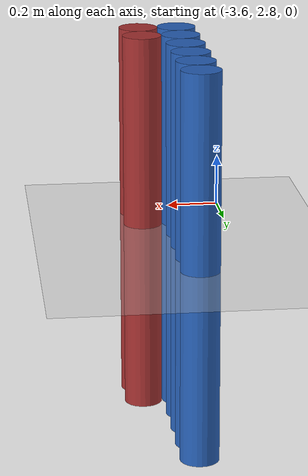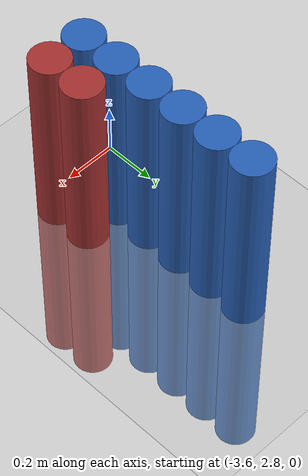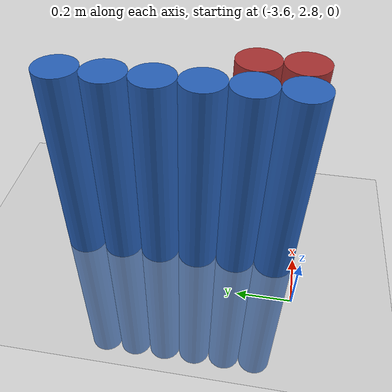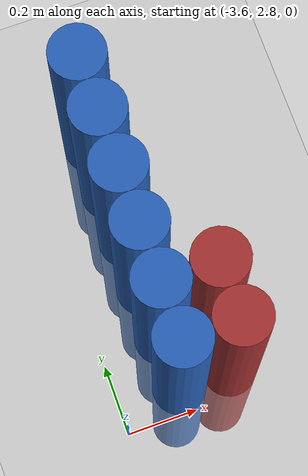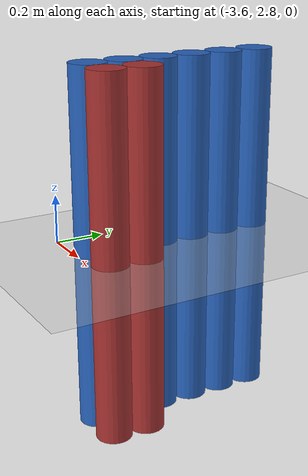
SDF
<sdf version="1.6">
 <world name="default">
  <model name="ground_plane">
   <static>1</static>
   <link name="link">
    <collision name="collision">
     <geometry><plane><normal>0 0 1</normal><size>100 100</size></plane></geometry>
     <surface><friction><ode><mu>100</mu><mu2>50</mu2></ode></friction></surface>
    </collision>
    <visual name="visual">
     <cast_shadows>0</cast_shadows>
     <geometry><plane><normal>0 0 1</normal><size>100 100</size></plane></geometry>
     <material>
      <script><uri>file://media/materials/scripts/gazebo.material</uri><name>Gazebo/Grey</name></script>
     </material>
    </visual>
   </link>
  </model>
  <model name="unit_cylinder_155">
   <static>1</static>
   <pose>-3.425000 3.025000 0.000000 0.000000 0.000000 0.000000</pose>
   <link name="link">
    <inertial>
     <mass>1</mass>
     <inertia><ixx>0.145833</ixx><ixy>0</ixy><ixz>0</ixz><iyy>0.145833</iyy><iyz>0</iyz><izz>0.125</izz></inertia>
    </inertial>
    <collision name="collision">
     <geometry><cylinder><radius>0.075000</radius><length>1.5</length></cylinder></geometry>
    </collision>
    <visual name="visual">
     <geometry><cylinder><radius>0.075000</radius><length>1.5</length></cylinder></geometry>
     <material>
      <ambient>0.152000 0.379000 0.720000 1</ambient>
      <diffuse>0.152000 0.379000 0.720000 1</diffuse>
     </material>
     <material>
      <script><name>Gazebo/Grey</name><uri>file://media/materials/scripts/gazebo.material</uri></script>
     </material>
    </visual>
   </link>
  </model>
  <model name="unit_cylinder_157">
   <static>1</static>
   <pose>-3.425000 3.175000 0.000000 0.000000 0.000000 0.000000</pose>
   <link name="link">
    <inertial>
     <mass>1</mass>
     <inertia><ixx>0.145833</ixx><ixy>0</ixy><ixz>0</ixz><iyy>0.145833</iyy><iyz>0</iyz><izz>0.125</izz></inertia>
    </inertial>
    <collision name="collision">
     <geometry><cylinder><radius>0.075000</radius><length>1.5</length></cylinder></geometry>
    </collision>
    <visual name="visual">
     <geometry><cylinder><radius>0.075000</radius><length>1.5</length></cylinder></geometry>
     <material>
      <ambient>0.152000 0.379000 0.720000 1</ambient>
      <diffuse>0.152000 0.379000 0.720000 1</diffuse>
     </material>
     <material>
      <script><name>Gazebo/Grey</name><uri>file://media/materials/scripts/gazebo.material</uri></script>
     </material>
    </visual>
   </link>
  </model>
  <model name="unit_cylinder_159">
   <static>1</static>
   <pose>-3.425000 3.325000 0.000000 0.000000 0.000000 0.000000</pose>
   <link name="link">
    <inertial>
     <mass>1</mass>
     <inertia><ixx>0.145833</ixx><ixy>0</ixy><ixz>0</ixz><iyy>0.145833</iyy><iyz>0</iyz><izz>0.125</izz></inertia>
    </inertial>
    <collision name="collision">
     <geometry><cylinder><radius>0.075000</radius><length>1.5</length></cylinder></geometry>
    </collision>
    <visual name="visual">
     <geometry><cylinder><radius>0.075000</radius><length>1.5</length></cylinder></geometry>
     <material>
      <ambient>0.152000 0.379000 0.720000 1</ambient>
      <diffuse>0.152000 0.379000 0.720000 1</diffuse>
     </material>
     <material>
      <script><name>Gazebo/Grey</name><uri>file://media/materials/scripts/gazebo.material</uri></script>
     </material>
    </visual>
   </link>
  </model>
  <model name="unit_cylinder_161">
   <static>1</static>
   <pose>-3.425000 3.475000 0.000000 0.000000 0.000000 0.000000</pose>
   <link name="link">
    <inertial>
     <mass>1</mass>
     <inertia><ixx>0.145833</ixx><ixy>0</ixy><ixz>0</ixz><iyy>0.145833</iyy><iyz>0</iyz><izz>0.125</izz></inertia>
    </inertial>
    <collision name="collision">
     <geometry><cylinder><radius>0.075000</radius><length>1.5</length></cylinder></geometry>
    </collision>
    <visual name="visual">
     <geometry><cylinder><radius>0.075000</radius><length>1.5</length></cylinder></geometry>
     <material>
      <ambient>0.152000 0.379000 0.720000 1</ambient>
      <diffuse>0.152000 0.379000 0.720000 1</diffuse>
     </material>
     <material>
      <script><name>Gazebo/Grey</name><uri>file://media/materials/scripts/gazebo.material</uri></script>
     </material>
    </visual>
   </link>
  </model>
  <model name="unit_cylinder_163">
   <static>1</static>
   <pose>-3.425000 3.625000 0.000000 0.000000 0.000000 0.000000</pose>
   <link name="link">
    <inertial>
     <mass>1</mass>
     <inertia><ixx>0.145833</ixx><ixy>0</ixy><ixz>0</ixz><iyy>0.145833</iyy><iyz>0</iyz><izz>0.125</izz></inertia>
    </inertial>
    <collision name="collision">
     <geometry><cylinder><radius>0.075000</radius><length>1.5</length></cylinder></geometry>
    </collision>
    <visual name="visual">
     <geometry><cylinder><radius>0.075000</radius><length>1.5</length></cylinder></geometry>
     <material>
      <ambient>0.152000 0.379000 0.720000 1</ambient>
      <diffuse>0.152000 0.379000 0.720000 1</diffuse>
     </material>
     <material>
      <script><name>Gazebo/Grey</name><uri>file://media/materials/scripts/gazebo.material</uri></script>
     </material>
    </visual>
   </link>
  </model>
  <model name="unit_cylinder_240">
   <static>1</static>
   <pose>-3.425000 2.875000 0.000000 0.000000 0.000000 0.000000</pose>
   <link name="link">
    <inertial>
     <mass>1</mass>
     <inertia><ixx>0.145833</ixx><ixy>0</ixy><ixz>0</ixz><iyy>0.145833</iyy><iyz>0</iyz><izz>0.125</izz></inertia>
    </inertial>
    <collision name="collision">
     <geometry><cylinder><radius>0.075000</radius><length>1.5</length></cylinder></geometry>
    </collision>
    <visual name="visual">
     <geometry><cylinder><radius>0.075000</radius><length>1.5</length></cylinder></geometry>
     <material>
      <ambient>0.152000 0.379000 0.720000 1</ambient>
      <diffuse>0.152000 0.379000 0.720000 1</diffuse>
     </material>
     <material>
      <script><name>Gazebo/Grey</name><uri>file://media/materials/scripts/gazebo.material</uri></script>
     </material>
    </visual>
   </link>
  </model>
  <model name="unit_cylinder_241">
   <static>1</static>
   <pose>-3.425000 3.025000 0.000000 0.000000 0.000000 0.000000</pose>
   <link name="link">
    <inertial>
     <mass>1</mass>
     <inertia><ixx>0.145833</ixx><ixy>0</ixy><ixz>0</ixz><iyy>0.145833</iyy><iyz>0</iyz><izz>0.125</izz></inertia>
    </inertial>
    <collision name="collision">
     <geometry><cylinder><radius>0.075000</radius><length>1.5</length></cylinder></geometry>
    </collision>
    <visual name="visual">
     <geometry><cylinder><radius>0.075000</radius><length>1.5</length></cylinder></geometry>
     <material>
      <ambient>0.152000 0.379000 0.720000 1</ambient>
      <diffuse>0.152000 0.379000 0.720000 1</diffuse>
     </material>
     <material>
      <script><name>Gazebo/Grey</name><uri>file://media/materials/scripts/gazebo.material</uri></script>
     </material>
    </visual>
   </link>
  </model>
  <model name="unit_cylinder_242">
   <static>1</static>
   <pose>-3.425000 3.175000 0.000000 0.000000 0.000000 0.000000</pose>
   <link name="link">
    <inertial>
     <mass>1</mass>
     <inertia><ixx>0.145833</ixx><ixy>0</ixy><ixz>0</ixz><iyy>0.145833</iyy><iyz>0</iyz><izz>0.125</izz></inertia>
    </inertial>
    <collision name="collision">
     <geometry><cylinder><radius>0.075000</radius><length>1.5</length></cylinder></geometry>
    </collision>
    <visual name="visual">
     <geometry><cylinder><radius>0.075000</radius><length>1.5</length></cylinder></geometry>
     <material>
      <ambient>0.152000 0.379000 0.720000 1</ambient>
      <diffuse>0.152000 0.379000 0.720000 1</diffuse>
     </material>
     <material>
      <script><name>Gazebo/Grey</name><uri>file://media/materials/scripts/gazebo.material</uri></script>
     </material>
    </visual>
   </link>
  </model>
  <model name="unit_cylinder_243">
   <static>1</static>
   <pose>-3.425000 3.325000 0.000000 0.000000 0.000000 0.000000</pose>
   <link name="link">
    <inertial>
     <mass>1</mass>
     <inertia><ixx>0.145833</ixx><ixy>0</ixy><ixz>0</ixz><iyy>0.145833</iyy><iyz>0</iyz><izz>0.125</izz></inertia>
    </inertial>
    <collision name="collision">
     <geometry><cylinder><radius>0.075000</radius><length>1.5</length></cylinder></geometry>
    </collision>
    <visual name="visual">
     <geometry><cylinder><radius>0.075000</radius><length>1.5</length></cylinder></geometry>
     <material>
      <ambient>0.152000 0.379000 0.720000 1</ambient>
      <diffuse>0.152000 0.379000 0.720000 1</diffuse>
     </material>
     <material>
      <script><name>Gazebo/Grey</name><uri>file://media/materials/scripts/gazebo.material</uri></script>
     </material>
    </visual>
   </link>
  </model>
  <model name="unit_cylinder_244">
   <static>1</static>
   <pose>-3.425000 3.475000 0.000000 0.000000 0.000000 0.000000</pose>
   <link name="link">
    <inertial>
     <mass>1</mass>
     <inertia><ixx>0.145833</ixx><ixy>0</ixy><ixz>0</ixz><iyy>0.145833</iyy><iyz>0</iyz><izz>0.125</izz></inertia>
    </inertial>
    <collision name="collision">
     <geometry><cylinder><radius>0.075000</radius><length>1.5</length></cylinder></geometry>
    </collision>
    <visual name="visual">
     <geometry><cylinder><radius>0.075000</radius><length>1.5</length></cylinder></geometry>
     <material>
      <ambient>0.152000 0.379000 0.720000 1</ambient>
      <diffuse>0.152000 0.379000 0.720000 1</diffuse>
     </material>
     <material>
      <script><name>Gazebo/Grey</name><uri>file://media/materials/scripts/gazebo.material</uri></script>
     </material>
    </visual>
   </link>
  </model>
  <model name="unit_cylinder_245">
   <static>1</static>
   <pose>-3.425000 3.625000 0.000000 0.000000 0.000000 0.000000</pose>
   <link name="link">
    <inertial>
     <mass>1</mass>
     <inertia><ixx>0.145833</ixx><ixy>0</ixy><ixz>0</ixz><iyy>0.145833</iyy><iyz>0</iyz><izz>0.125</izz></inertia>
    </inertial>
    <collision name="collision">
     <geometry><cylinder><radius>0.075000</radius><length>1.5</length></cylinder></geometry>
    </collision>
    <visual name="visual">
     <geometry><cylinder><radius>0.075000</radius><length>1.5</length></cylinder></geometry>
     <material>
      <ambient>0.152000 0.379000 0.720000 1</ambient>
      <diffuse>0.152000 0.379000 0.720000 1</diffuse>
     </material>
     <material>
      <script><name>Gazebo/Grey</name><uri>file://media/materials/scripts/gazebo.material</uri></script>
     </material>
    </visual>
   </link>
  </model>
  <model name="unit_cylinder_264">
   <static>1</static>
   <pose>-3.275000 2.875000 0.000000 0.000000 0.000000 0.000000</pose>
   <link name="link">
    <inertial>
     <mass>1</mass>
     <inertia><ixx>0.145833</ixx><ixy>0</ixy><ixz>0</ixz><iyy>0.145833</iyy><iyz>0</iyz><izz>0.125</izz></inertia>
    </inertial>
    <collision name="collision">
     <geometry><cylinder><radius>0.075000</radius><length>1.5</length></cylinder></geometry>
    </collision>
    <visual name="visual">
     <geometry><cylinder><radius>0.075000</radius><length>1.5</length></cylinder></geometry>
     <material>
      <ambient>0.648000 0.192000 0.192000 1</ambient>
      <diffuse>0.648000 0.192000 0.192000 1</diffuse>
     </material>
     <material>
      <script><name>Gazebo/Grey</name><uri>file://media/materials/scripts/gazebo.material</uri></script>
     </material>
    </visual>
   </link>
  </model>
  <model name="unit_cylinder_265">
   <static>1</static>
   <pose>-3.275000 3.025000 0.000000 0.000000 0.000000 0.000000</pose>
   <link name="link">
    <inertial>
     <mass>1</mass>
     <inertia><ixx>0.145833</ixx><ixy>0</ixy><ixz>0</ixz><iyy>0.145833</iyy><iyz>0</iyz><izz>0.125</izz></inertia>
    </inertial>
    <collision name="collision">
     <geometry><cylinder><radius>0.075000</radius><length>1.5</length></cylinder></geometry>
    </collision>
    <visual name="visual">
     <geometry><cylinder><radius>0.075000</radius><length>1.5</length></cylinder></geometry>
     <material>
      <ambient>0.648000 0.192000 0.192000 1</ambient>
      <diffuse>0.648000 0.192000 0.192000 1</diffuse>
     </material>
     <material>
      <script><name>Gazebo/Grey</name><uri>file://media/materials/scripts/gazebo.material</uri></script>
     </material>
    </visual>
   </link>
  </model>
 </world>
</sdf>
